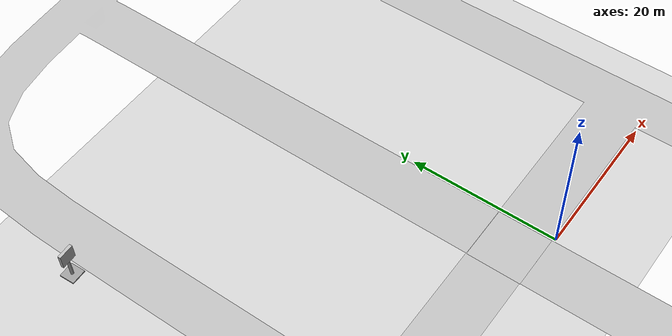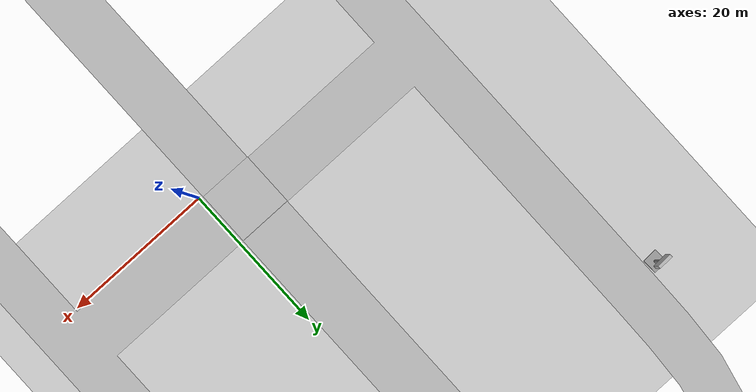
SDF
<sdf version="1.7">
 <world name="default">
  <model name="ground_plane">
   <static>1</static>
   <link name="link">
    <collision name="collision">
     <geometry><plane><normal>0 0 1</normal><size>100 100</size></plane></geometry>
     <surface><friction><ode><mu>100</mu><mu2>50</mu2></ode></friction></surface>
    </collision>
    <visual name="visual">
     <cast_shadows>0</cast_shadows>
     <geometry><plane><normal>0 0 1</normal><size>100 100</size></plane></geometry>
     <material>
      <script><uri>file://media/materials/scripts/gazebo.material</uri><name>Gazebo/Grey</name></script>
     </material>
    </visual>
   </link>
  </model>
  <model name="self_driving_track">
   <link name="link_0">
    <pose>-0.03442 0.020057 0 0 -0 0</pose>
    <visual name="visual">
     <geometry>
      <mesh>
       <uri>/root/autonomous_ws/src/self_driving_car_pkg/models/track/meshes/complete_circuit.dae</uri>
       <scale>1 1 1</scale>
      </mesh>
     </geometry>
     <material>
      <script>
       <uri>/root/autonomous_ws/src/self_driving_car_pkg/models/track/materials/scripts</uri>
       <uri>/root/autonomous_ws/src/self_driving_car_pkg/models/track/materials/textures</uri>
       <name>road/Diffuse</name>
      </script>
     </material>
    </visual>
    <collision name="collision">
     <geometry>
      <mesh>
       <uri>/root/autonomous_ws/src/self_driving_car_pkg/models/track/meshes/complete_circuit.dae</uri>
       <scale>1 1 1</scale>
      </mesh>
     </geometry>
     <surface>
      <friction>
       <ode><mu>1</mu><mu2>1</mu2><fdir1>0 0 0</fdir1><slip1>0</slip1><slip2>0</slip2></ode>
       <torsional>
        <coefficient>1</coefficient>
        <patch_radius>0</patch_radius>
        <surface_radius>0</surface_radius>
        <use_patch_radius>1</use_patch_radius>
        <ode><slip>0</slip></ode>
       </torsional>
      </friction>
      <bounce><restitution_coefficient>0</restitution_coefficient><threshold>1e+06</threshold></bounce>
      <contact>
       <collide_without_contact>0</collide_without_contact>
       <collide_without_contact_bitmask>1</collide_without_contact_bitmask>
       <collide_bitmask>1</collide_bitmask>
       <ode>
        <soft_cfm>0</soft_cfm>
        <soft_erp>0.2</soft_erp>
        <kp>1e+13</kp>
        <kd>1</kd>
        <max_vel>0.01</max_vel>
        <min_depth>0</min_depth>
       </ode>
       <bullet>
        <split_impulse>1</split_impulse>
        <split_impulse_penetration_threshold>-0.01</split_impulse_penetration_threshold>
        <soft_cfm>0</soft_cfm>
        <soft_erp>0.2</soft_erp>
        <kp>1e+13</kp>
        <kd>1</kd>
       </bullet>
      </contact>
     </surface>
    </collision>
   </link>
   <link name="link_1">
    <pose>0.034415 -0.020057 0 0 -0 0</pose>
    <visual name="visual">
     <geometry>
      <mesh>
       <uri>/root/autonomous_ws/src/self_driving_car_pkg/models/track/meshes/chowk.dae</uri>
       <scale>1 1 1</scale>
      </mesh>
     </geometry>
     <material>
      <script>
       <uri>/root/autonomous_ws/src/self_driving_car_pkg/models/track/materials/scripts</uri>
       <uri>/root/autonomous_ws/src/self_driving_car_pkg/models/track/materials/textures</uri>
       <name>chowk/Diffuse</name>
      </script>
     </material>
    </visual>
    <collision name="collision">
     <geometry>
      <mesh>
       <uri>/root/autonomous_ws/src/self_driving_car_pkg/models/track/meshes/chowk.dae</uri>
       <scale>1 1 1</scale>
      </mesh>
     </geometry>
     <surface>
      <friction>
       <ode><mu>1</mu><mu2>1</mu2><fdir1>0 0 0</fdir1><slip1>0</slip1><slip2>0</slip2></ode>
       <torsional>
        <coefficient>1</coefficient>
        <patch_radius>0</patch_radius>
        <surface_radius>0</surface_radius>
        <use_patch_radius>1</use_patch_radius>
        <ode><slip>0</slip></ode>
       </torsional>
      </friction>
      <bounce><restitution_coefficient>0</restitution_coefficient><threshold>1e+06</threshold></bounce>
      <contact>
       <collide_without_contact>0</collide_without_contact>
       <collide_without_contact_bitmask>1</collide_without_contact_bitmask>
       <collide_bitmask>1</collide_bitmask>
       <ode>
        <soft_cfm>0</soft_cfm>
        <soft_erp>0.2</soft_erp>
        <kp>1e+13</kp>
        <kd>1</kd>
        <max_vel>0.01</max_vel>
        <min_depth>0</min_depth>
       </ode>
       <bullet>
        <split_impulse>1</split_impulse>
        <split_impulse_penetration_threshold>-0.01</split_impulse_penetration_threshold>
        <soft_cfm>0</soft_cfm>
        <soft_erp>0.2</soft_erp>
        <kp>1e+13</kp>
        <kd>1</kd>
       </bullet>
      </contact>
     </surface>
    </collision>
   </link>
   <static>1</static>
   <pose>-10.3117 2.90713 0.261395 0 -0 0</pose>
  </model>
  <model name="model">
   <link name="link_0">
    <inertial>
     <mass>1</mass>
     <inertia>
      <ixx>0.166667</ixx>
      <ixy>0</ixy>
      <ixz>0</ixz>
      <iyy>0.166667</iyy>
      <iyz>0</iyz>
      <izz>0.166667</izz>
     </inertia>
    </inertial>
    <pose>0.022743 0.014704 -1.81581 0 -0 0</pose>
    <visual name="visual">
     <geometry>
      <mesh>
       <uri>/root/autonomous_ws/src/self_driving_car_pkg/models/sign_board_30/meshes/sign_stand.dae</uri>
       <scale>1 1 1</scale>
      </mesh>
     </geometry>
     <material>
      <lighting>1</lighting>
      <script><uri>file://media/materials/scripts/gazebo.material</uri><name>Gazebo/Grey</name></script>
      <shader type="pixel"/>
      <emissive>0 0 0 1</emissive>
     </material>
    </visual>
    <collision name="collision">
     <geometry>
      <mesh>
       <uri>/root/autonomous_ws/src/self_driving_car_pkg/models/sign_board_30/meshes/sign_stand.dae</uri>
       <scale>1 1 1</scale>
      </mesh>
     </geometry>
     <surface>
      <friction>
       <ode><mu>1</mu><mu2>1</mu2><fdir1>0 0 0</fdir1><slip1>0</slip1><slip2>0</slip2></ode>
       <torsional>
        <coefficient>1</coefficient>
        <patch_radius>0</patch_radius>
        <surface_radius>0</surface_radius>
        <use_patch_radius>1</use_patch_radius>
        <ode><slip>0</slip></ode>
       </torsional>
      </friction>
      <bounce><restitution_coefficient>0</restitution_coefficient><threshold>1e+06</threshold></bounce>
      <contact>
       <collide_without_contact>0</collide_without_contact>
       <collide_without_contact_bitmask>1</collide_without_contact_bitmask>
       <collide_bitmask>1</collide_bitmask>
       <ode>
        <soft_cfm>0</soft_cfm>
        <soft_erp>0.2</soft_erp>
        <kp>1e+13</kp>
        <kd>1</kd>
        <max_vel>0.01</max_vel>
        <min_depth>0</min_depth>
       </ode>
       <bullet>
        <split_impulse>1</split_impulse>
        <split_impulse_penetration_threshold>-0.01</split_impulse_penetration_threshold>
        <soft_cfm>0</soft_cfm>
        <soft_erp>0.2</soft_erp>
        <kp>1e+13</kp>
        <kd>1</kd>
       </bullet>
      </contact>
     </surface>
    </collision>
   </link>
   <link name="link_1">
    <inertial>
     <mass>1</mass>
     <inertia>
      <ixx>0.166667</ixx>
      <ixy>0</ixy>
      <ixz>0</ixz>
      <iyy>0.166667</iyy>
      <iyz>0</iyz>
      <izz>0.166667</izz>
     </inertia>
    </inertial>
    <pose>-0.022742 -0.014704 1.81581 0 -0 0</pose>
    <visual name="visual">
     <geometry>
      <mesh>
       <uri>/root/autonomous_ws/src/self_driving_car_pkg/models/sign_board_30/meshes/sign_board.dae</uri>
       <scale>1 1 1</scale>
      </mesh>
     </geometry>
     <material>
      <lighting>1</lighting>
      <script>
       <uri>/root/autonomous_ws/src/self_driving_car_pkg/models/sign_board_30/materials/scripts</uri>
       <uri>/root/autonomous_ws/src/self_driving_car_pkg/models/sign_board_30/materials/textures</uri>
       <name>model/Diffuse</name>
      </script>
      <shader type="pixel"/>
      <emissive>0 0 0 1</emissive>
     </material>
    </visual>
    <collision name="collision">
     <geometry>
      <mesh>
       <uri>/root/autonomous_ws/src/self_driving_car_pkg/models/sign_board_30/meshes/sign_board.dae</uri>
       <scale>1 1 1</scale>
      </mesh>
     </geometry>
     <surface>
      <friction>
       <ode><mu>1</mu><mu2>1</mu2><fdir1>0 0 0</fdir1><slip1>0</slip1><slip2>0</slip2></ode>
       <torsional>
        <coefficient>1</coefficient>
        <patch_radius>0</patch_radius>
        <surface_radius>0</surface_radius>
        <use_patch_radius>1</use_patch_radius>
        <ode><slip>0</slip></ode>
       </torsional>
      </friction>
      <bounce><restitution_coefficient>0</restitution_coefficient><threshold>1e+06</threshold></bounce>
      <contact>
       <collide_without_contact>0</collide_without_contact>
       <collide_without_contact_bitmask>1</collide_without_contact_bitmask>
       <collide_bitmask>1</collide_bitmask>
       <ode>
        <soft_cfm>0</soft_cfm>
        <soft_erp>0.2</soft_erp>
        <kp>1e+13</kp>
        <kd>1</kd>
        <max_vel>0.01</max_vel>
        <min_depth>0</min_depth>
       </ode>
       <bullet>
        <split_impulse>1</split_impulse>
        <split_impulse_penetration_threshold>-0.01</split_impulse_penetration_threshold>
        <soft_cfm>0</soft_cfm>
        <soft_erp>0.2</soft_erp>
        <kp>1e+13</kp>
        <kd>1</kd>
       </bullet>
      </contact>
     </surface>
    </collision>
   </link>
   <joint name="link_0_JOINT_0" type="fixed">
    <parent>link_0</parent>
    <child>link_1</child>
    <physics>
     <ode><limit><cfm>0</cfm><erp>0.2</erp></limit><suspension><cfm>0</cfm><erp>0.2</erp></suspension></ode>
    </physics>
   </joint>
   <static>1</static>
   <pose>-36.0075 42.9497 1.98891 0 -0 1.61229</pose>
  </model>
 </world>
</sdf>
